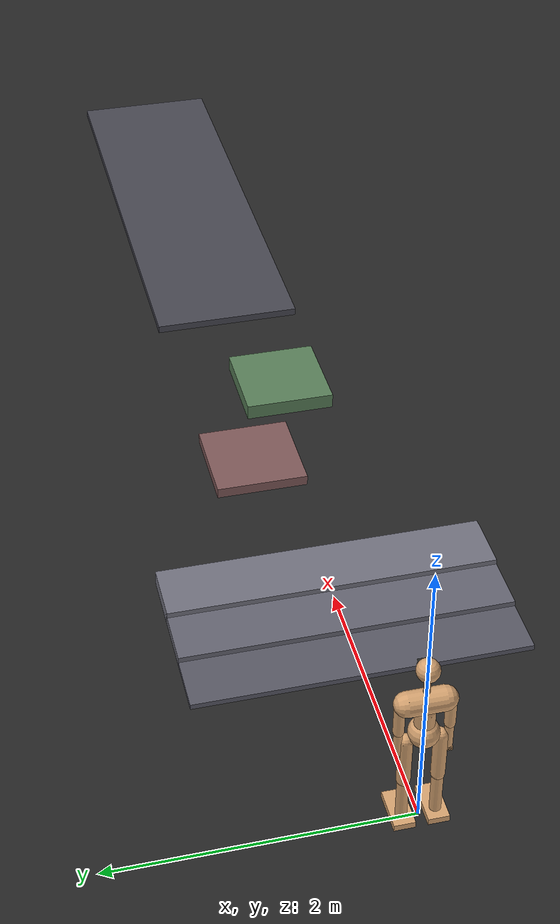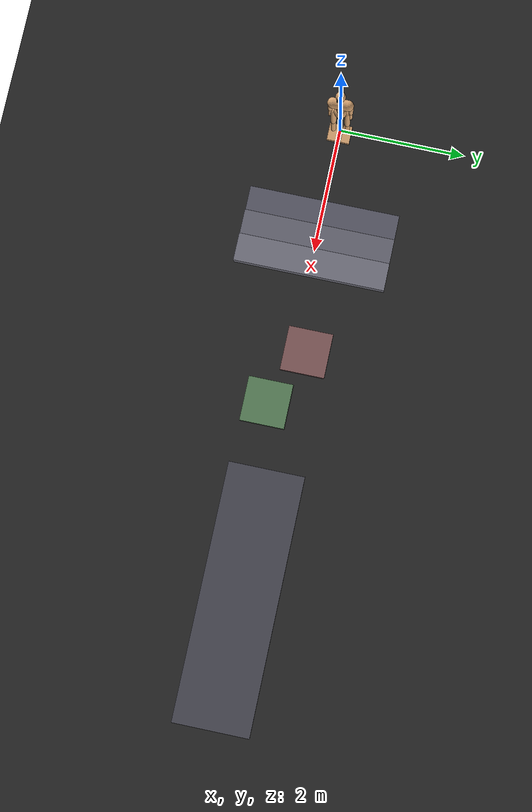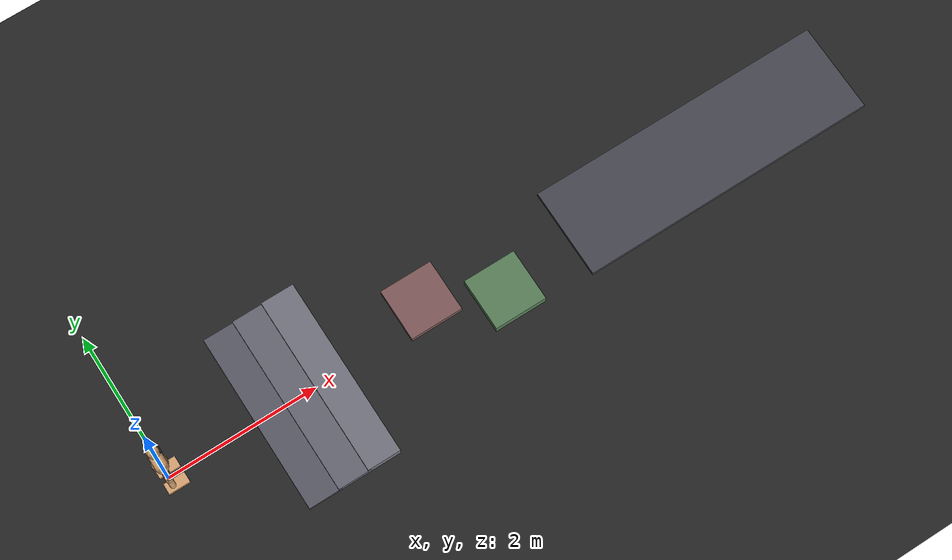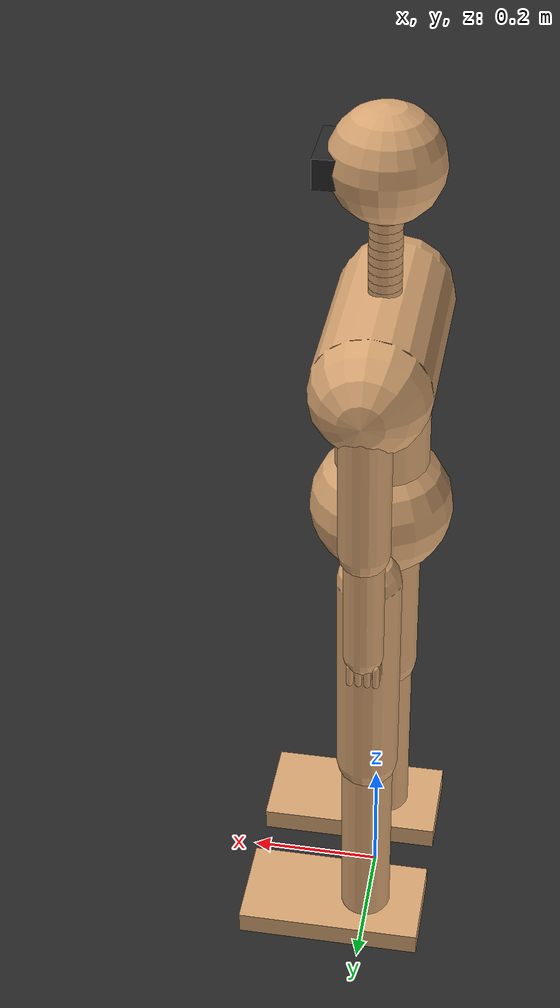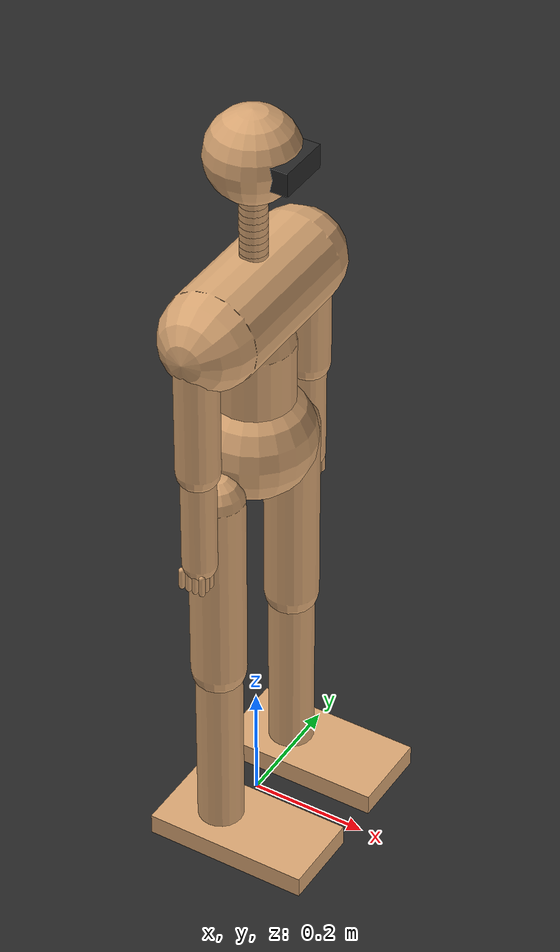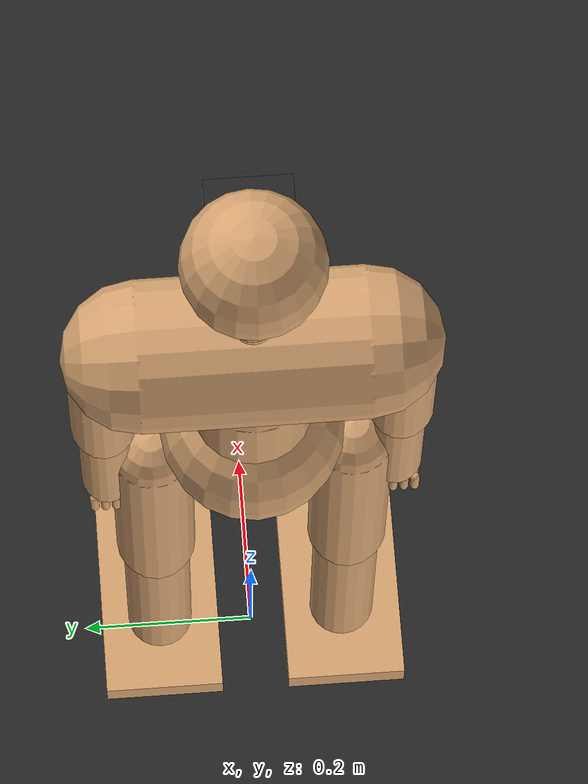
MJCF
<mujoco model="flagship_humanoid">
  <compiler angle="radian" inertiafromgeom="true" coordinate="local"/>
  <option timestep="0.0025" gravity="0 0 -9.81"/>
  <default>
    <joint limited="true" damping="35.0" armature="0.08" stiffness="120.0"/>
    <geom contype="1" conaffinity="1" condim="3" friction="1.6 0.2 0.1" rgba="0.85 0.65 0.45 1"/>
    <position ctrllimited="true" forcelimited="true" forcerange="-400 400"/>
  </default>
  <worldbody>
    <light pos="0 0 6" dir="0 0 -1" diffuse="0.8 0.8 0.8"/>
    <geom name="floor" type="plane" pos="0 0 0" size="30 30 0.1" rgba="0.15 0.15 0.15 1"/>

    <geom name="step_1" type="box" pos="1.4 0 0.02" size="0.22 1.2 0.02" rgba="0.35 0.35 0.4 1"/>
    <geom name="step_2" type="box" pos="1.8 0 0.04" size="0.22 1.2 0.04" rgba="0.40 0.40 0.45 1"/>
    <geom name="step_3" type="box" pos="2.2 0 0.06" size="0.22 1.2 0.06" rgba="0.45 0.45 0.5 1"/>
    <geom name="block_left" type="box" pos="3.6 0.22 0.04" size="0.35 0.35 0.04" rgba="0.5 0.35 0.35 1"/>
    <geom name="block_right" type="box" pos="4.5 -0.22 0.06" size="0.35 0.35 0.06" rgba="0.35 0.5 0.35 1"/>
    <geom name="ridge_track" type="box" pos="7.5 0 0.03" size="2.0 0.6 0.03" rgba="0.28 0.28 0.32 1"/>
    <body name="pelvis" pos="0 0 0.74">
      <freejoint name="root"/>
      <geom name="pelvis_g" type="sphere" size="0.10" mass="10.0"/>
      <site name="vestibular_ear" pos="0 0 0" size="0.01" rgba="1 0 0 1"/>
      <body name="r_thigh" pos="0 -0.11 -0.05">
        <joint name="j_3" type="hinge" axis="1 0 0" range="-0.44 0.09"/>
        <joint name="j_4" type="hinge" axis="0 0 1" range="-1.05 0.61"/>
        <joint name="j_5" type="hinge" axis="0 1 0" range="-1.92 0.35"/>
        <geom name="r_thigh_g" type="capsule" size="0.045" fromto="0 0 0 0 0 -0.34" mass="5.5"/>
        <body name="r_shin" pos="0 0 -0.34">
          <joint name="j_6" type="hinge" axis="0 1 0" range="0.15 2.4"/>
          <geom name="r_shin_g" type="capsule" size="0.038" fromto="0 0 0 0 0 -0.32" mass="4.0"/>
          <body name="r_foot" pos="0 0 -0.32">
            <joint name="j_7" type="hinge" axis="0 1 0" range="-0.87 0.87"/>
            <joint name="j_8" type="hinge" axis="1 0 0" range="-0.87 0.87"/>
            <geom name="r_foot_g" type="box" size="0.14 0.07 0.025" pos="0.05 0 -0.02" mass="1.8"/>
            <site name="r_foot_site" type="box" size="0.142 0.072 0.026" pos="0.05 0 -0.02" rgba="1 0 0 0"/>
          </body></body>
      </body>
      <body name="l_thigh" pos="0 0.11 -0.05">
        <joint name="j_9" type="hinge" axis="1 0 0" range="-0.44 0.09"/>
        <joint name="j_10" type="hinge" axis="0 0 1" range="-1.05 0.61"/>
        <joint name="j_11" type="hinge" axis="0 1 0" range="-1.92 0.35"/>
        <geom name="l_thigh_g" type="capsule" size="0.045" fromto="0 0 0 0 0 -0.34" mass="5.5"/>
        <body name="l_shin" pos="0 0 -0.34">
          <joint name="j_12" type="hinge" axis="0 1 0" range="0.15 2.4"/>
          <geom name="l_shin_g" type="capsule" size="0.038" fromto="0 0 0 0 0 -0.32" mass="4.0"/>
          <body name="l_foot" pos="0 0 -0.32">
            <joint name="j_13" type="hinge" axis="0 1 0" range="-0.87 0.87"/>
            <joint name="j_14" type="hinge" axis="1 0 0" range="-0.87 0.87"/>
            <geom name="l_foot_g" type="box" size="0.14 0.07 0.025" pos="0.05 0 -0.02" mass="1.8"/>
            <site name="l_foot_site" type="box" size="0.142 0.072 0.026" pos="0.05 0 -0.02" rgba="1 0 0 0"/>
          </body></body>
      </body>
      <body name="lower_torso" pos="0 0 0.06">
        <joint name="j_0" type="hinge" axis="0 1 0" range="-1.31 0.52"/>
        <joint name="j_1" type="hinge" axis="0 0 1" range="-0.79 0.79"/>
        <joint name="j_2" type="hinge" axis="1 0 0" range="-0.61 0.61"/>
        <geom name="lower_torso_g" type="capsule" size="0.065" fromto="0 0 0 0 0 0.12" mass="4.0"/>
        <body name="upper_chest" pos="0 0 0.12">
          <geom name="chest_g" type="capsule" size="0.08" fromto="0 -0.12 0.08 0 0.12 0.08" mass="8.0"/>
          <body name="r_upper_arm" pos="0 -0.16 0.08">
            <joint name="j_15" type="hinge" axis="0 1 0" range="-1.48 1.05"/>
            <joint name="j_16" type="hinge" axis="1 0 0" range="-1.48 1.05"/>
            <geom name="r_uarm_g" type="capsule" size="0.035" fromto="0 0 0 0 0 -0.22" mass="1.5"/>
            <body name="r_forearm" pos="0 0 -0.22">
              <joint name="j_17" type="hinge" axis="0 1 0" range="-1.57 0.87"/>
              <geom name="r_farm_g" type="capsule" size="0.028" fromto="0 0 0 0 0 -0.18" mass="1.0"/>
              <body name="r_hand" pos="0 0 -0.18">
                <body name="r_finger_0" pos="-0.02 -0.02 -0.01">
                  <joint name="j_21" type="hinge" axis="0 1 0" range="-0.78 0.78" stiffness="10.0" damping="1.0"/>
                  <geom name="r_fg_0" type="capsule" size="0.005" fromto="0 0 0 0 0 -0.03" mass="0.05"/>
                </body>
                <body name="r_finger_1" pos="-0.008 -0.02 -0.01">
                  <joint name="j_22" type="hinge" axis="0 1 0" range="-0.78 0.78" stiffness="10.0" damping="1.0"/>
                  <geom name="r_fg_1" type="capsule" size="0.005" fromto="0 0 0 0 0 -0.03" mass="0.05"/>
                </body>
                <body name="r_finger_2" pos="0.004 -0.02 -0.01">
                  <joint name="j_23" type="hinge" axis="0 1 0" range="-0.78 0.78" stiffness="10.0" damping="1.0"/>
                  <geom name="r_fg_2" type="capsule" size="0.005" fromto="0 0 0 0 0 -0.03" mass="0.05"/>
                </body>
                <body name="r_finger_3" pos="0.016000000000000004 -0.02 -0.01">
                  <joint name="j_24" type="hinge" axis="0 1 0" range="-0.78 0.78" stiffness="10.0" damping="1.0"/>
                  <geom name="r_fg_3" type="capsule" size="0.005" fromto="0 0 0 0 0 -0.03" mass="0.05"/>
                </body>
                <body name="r_finger_4" pos="-0.02 -0.008 -0.01">
                  <joint name="j_25" type="hinge" axis="0 1 0" range="-0.78 0.78" stiffness="10.0" damping="1.0"/>
                  <geom name="r_fg_4" type="capsule" size="0.005" fromto="0 0 0 0 0 -0.03" mass="0.05"/>
                </body>
                <body name="r_finger_5" pos="-0.008 -0.008 -0.01">
                  <joint name="j_26" type="hinge" axis="0 1 0" range="-0.78 0.78" stiffness="10.0" damping="1.0"/>
                  <geom name="r_fg_5" type="capsule" size="0.005" fromto="0 0 0 0 0 -0.03" mass="0.05"/>
                </body>
                <body name="r_finger_6" pos="0.004 -0.008 -0.01">
                  <joint name="j_27" type="hinge" axis="0 1 0" range="-0.78 0.78" stiffness="10.0" damping="1.0"/>
                  <geom name="r_fg_6" type="capsule" size="0.005" fromto="0 0 0 0 0 -0.03" mass="0.05"/>
                </body>
                <body name="r_finger_7" pos="0.016000000000000004 -0.008 -0.01">
                  <joint name="j_28" type="hinge" axis="0 1 0" range="-0.78 0.78" stiffness="10.0" damping="1.0"/>
                  <geom name="r_fg_7" type="capsule" size="0.005" fromto="0 0 0 0 0 -0.03" mass="0.05"/>
                </body>
                <body name="r_finger_8" pos="-0.02 0.004 -0.01">
                  <joint name="j_29" type="hinge" axis="0 1 0" range="-0.78 0.78" stiffness="10.0" damping="1.0"/>
                  <geom name="r_fg_8" type="capsule" size="0.005" fromto="0 0 0 0 0 -0.03" mass="0.05"/>
                </body>
                <body name="r_finger_9" pos="-0.008 0.004 -0.01">
                  <joint name="j_30" type="hinge" axis="0 1 0" range="-0.78 0.78" stiffness="10.0" damping="1.0"/>
                  <geom name="r_fg_9" type="capsule" size="0.005" fromto="0 0 0 0 0 -0.03" mass="0.05"/>
                </body>
                <body name="r_finger_10" pos="0.004 0.004 -0.01">
                  <joint name="j_31" type="hinge" axis="0 1 0" range="-0.78 0.78" stiffness="10.0" damping="1.0"/>
                  <geom name="r_fg_10" type="capsule" size="0.005" fromto="0 0 0 0 0 -0.03" mass="0.05"/>
                </body>
                <body name="r_finger_11" pos="0.016000000000000004 0.004 -0.01">
                  <joint name="j_32" type="hinge" axis="0 1 0" range="-0.78 0.78" stiffness="10.0" damping="1.0"/>
                  <geom name="r_fg_11" type="capsule" size="0.005" fromto="0 0 0 0 0 -0.03" mass="0.05"/>
                </body>
                <body name="r_finger_12" pos="-0.02 0.016000000000000004 -0.01">
                  <joint name="j_33" type="hinge" axis="0 1 0" range="-0.78 0.78" stiffness="10.0" damping="1.0"/>
                  <geom name="r_fg_12" type="capsule" size="0.005" fromto="0 0 0 0 0 -0.03" mass="0.05"/>
                </body>
                <body name="r_finger_13" pos="-0.008 0.016000000000000004 -0.01">
                  <joint name="j_34" type="hinge" axis="0 1 0" range="-0.78 0.78" stiffness="10.0" damping="1.0"/>
                  <geom name="r_fg_13" type="capsule" size="0.005" fromto="0 0 0 0 0 -0.03" mass="0.05"/>
                </body>
                <body name="r_finger_14" pos="0.004 0.016000000000000004 -0.01">
                  <joint name="j_35" type="hinge" axis="0 1 0" range="-0.78 0.78" stiffness="10.0" damping="1.0"/>
                  <geom name="r_fg_14" type="capsule" size="0.005" fromto="0 0 0 0 0 -0.03" mass="0.05"/>
                </body>
                <body name="r_finger_15" pos="0.016000000000000004 0.016000000000000004 -0.01">
                  <joint name="j_36" type="hinge" axis="0 1 0" range="-0.78 0.78" stiffness="10.0" damping="1.0"/>
                  <geom name="r_fg_15" type="capsule" size="0.005" fromto="0 0 0 0 0 -0.03" mass="0.05"/>
                </body>
              </body>
            </body>
          </body>
          <body name="l_upper_arm" pos="0 0.16 0.08">
            <joint name="j_18" type="hinge" axis="0 1 0" range="-1.05 1.48"/>
            <joint name="j_19" type="hinge" axis="1 0 0" range="-1.05 1.48"/>
            <geom name="l_uarm_g" type="capsule" size="0.035" fromto="0 0 0 0 0 -0.22" mass="1.5"/>
            <body name="l_forearm" pos="0 0 -0.22">
              <joint name="j_20" type="hinge" axis="0 1 0" range="-1.57 0.87"/>
              <geom name="l_farm_g" type="capsule" size="0.028" fromto="0 0 0 0 0 -0.18" mass="1.0"/>
              <body name="l_hand" pos="0 0 -0.18">
                <body name="l_finger_0" pos="-0.02 -0.02 -0.01">
                  <joint name="j_37" type="hinge" axis="0 1 0" range="-0.78 0.78" stiffness="10.0" damping="1.0"/>
                  <geom name="l_fg_0" type="capsule" size="0.005" fromto="0 0 0 0 0 -0.03" mass="0.05"/>
                </body>
                <body name="l_finger_1" pos="-0.008 -0.02 -0.01">
                  <joint name="j_38" type="hinge" axis="0 1 0" range="-0.78 0.78" stiffness="10.0" damping="1.0"/>
                  <geom name="l_fg_1" type="capsule" size="0.005" fromto="0 0 0 0 0 -0.03" mass="0.05"/>
                </body>
                <body name="l_finger_2" pos="0.004 -0.02 -0.01">
                  <joint name="j_39" type="hinge" axis="0 1 0" range="-0.78 0.78" stiffness="10.0" damping="1.0"/>
                  <geom name="l_fg_2" type="capsule" size="0.005" fromto="0 0 0 0 0 -0.03" mass="0.05"/>
                </body>
                <body name="l_finger_3" pos="0.016000000000000004 -0.02 -0.01">
                  <joint name="j_40" type="hinge" axis="0 1 0" range="-0.78 0.78" stiffness="10.0" damping="1.0"/>
                  <geom name="l_fg_3" type="capsule" size="0.005" fromto="0 0 0 0 0 -0.03" mass="0.05"/>
                </body>
                <body name="l_finger_4" pos="-0.02 -0.008 -0.01">
                  <joint name="j_41" type="hinge" axis="0 1 0" range="-0.78 0.78" stiffness="10.0" damping="1.0"/>
                  <geom name="l_fg_4" type="capsule" size="0.005" fromto="0 0 0 0 0 -0.03" mass="0.05"/>
                </body>
                <body name="l_finger_5" pos="-0.008 -0.008 -0.01">
                  <joint name="j_42" type="hinge" axis="0 1 0" range="-0.78 0.78" stiffness="10.0" damping="1.0"/>
                  <geom name="l_fg_5" type="capsule" size="0.005" fromto="0 0 0 0 0 -0.03" mass="0.05"/>
                </body>
                <body name="l_finger_6" pos="0.004 -0.008 -0.01">
                  <joint name="j_43" type="hinge" axis="0 1 0" range="-0.78 0.78" stiffness="10.0" damping="1.0"/>
                  <geom name="l_fg_6" type="capsule" size="0.005" fromto="0 0 0 0 0 -0.03" mass="0.05"/>
                </body>
                <body name="l_finger_7" pos="0.016000000000000004 -0.008 -0.01">
                  <joint name="j_44" type="hinge" axis="0 1 0" range="-0.78 0.78" stiffness="10.0" damping="1.0"/>
                  <geom name="l_fg_7" type="capsule" size="0.005" fromto="0 0 0 0 0 -0.03" mass="0.05"/>
                </body>
                <body name="l_finger_8" pos="-0.02 0.004 -0.01">
                  <joint name="j_45" type="hinge" axis="0 1 0" range="-0.78 0.78" stiffness="10.0" damping="1.0"/>
                  <geom name="l_fg_8" type="capsule" size="0.005" fromto="0 0 0 0 0 -0.03" mass="0.05"/>
                </body>
                <body name="l_finger_9" pos="-0.008 0.004 -0.01">
                  <joint name="j_46" type="hinge" axis="0 1 0" range="-0.78 0.78" stiffness="10.0" damping="1.0"/>
                  <geom name="l_fg_9" type="capsule" size="0.005" fromto="0 0 0 0 0 -0.03" mass="0.05"/>
                </body>
                <body name="l_finger_10" pos="0.004 0.004 -0.01">
                  <joint name="j_47" type="hinge" axis="0 1 0" range="-0.78 0.78" stiffness="10.0" damping="1.0"/>
                  <geom name="l_fg_10" type="capsule" size="0.005" fromto="0 0 0 0 0 -0.03" mass="0.05"/>
                </body>
                <body name="l_finger_11" pos="0.016000000000000004 0.004 -0.01">
                  <joint name="j_48" type="hinge" axis="0 1 0" range="-0.78 0.78" stiffness="10.0" damping="1.0"/>
                  <geom name="l_fg_11" type="capsule" size="0.005" fromto="0 0 0 0 0 -0.03" mass="0.05"/>
                </body>
                <body name="l_finger_12" pos="-0.02 0.016000000000000004 -0.01">
                  <joint name="j_49" type="hinge" axis="0 1 0" range="-0.78 0.78" stiffness="10.0" damping="1.0"/>
                  <geom name="l_fg_12" type="capsule" size="0.005" fromto="0 0 0 0 0 -0.03" mass="0.05"/>
                </body>
                <body name="l_finger_13" pos="-0.008 0.016000000000000004 -0.01">
                  <joint name="j_50" type="hinge" axis="0 1 0" range="-0.78 0.78" stiffness="10.0" damping="1.0"/>
                  <geom name="l_fg_13" type="capsule" size="0.005" fromto="0 0 0 0 0 -0.03" mass="0.05"/>
                </body>
                <body name="l_finger_14" pos="0.004 0.016000000000000004 -0.01">
                  <joint name="j_51" type="hinge" axis="0 1 0" range="-0.78 0.78" stiffness="10.0" damping="1.0"/>
                  <geom name="l_fg_14" type="capsule" size="0.005" fromto="0 0 0 0 0 -0.03" mass="0.05"/>
                </body>
                <body name="l_finger_15" pos="0.016000000000000004 0.016000000000000004 -0.01">
                  <joint name="j_52" type="hinge" axis="0 1 0" range="-0.78 0.78" stiffness="10.0" damping="1.0"/>
                  <geom name="l_fg_15" type="capsule" size="0.005" fromto="0 0 0 0 0 -0.03" mass="0.05"/>
                </body>
              </body>
            </body>
          </body>
          <body name="spine_base" pos="0 0 0.14">
            <body name="v_seg_0" pos="0 0 0.012">
              <joint name="j_53" type="hinge" axis="0 1 0" range="-0.35 0.35" stiffness="60.0"/>
              <geom name="vg_0" type="capsule" size="0.022" fromto="0 0 0 0 0 0.012" mass="0.2"/>
              <body name="v_seg_1" pos="0 0 0.012">
                <joint name="j_54" type="hinge" axis="0 1 0" range="-0.35 0.35" stiffness="60.0"/>
                <geom name="vg_1" type="capsule" size="0.022" fromto="0 0 0 0 0 0.012" mass="0.2"/>
              <body name="v_seg_2" pos="0 0 0.012">
                <joint name="j_55" type="hinge" axis="0 1 0" range="-0.35 0.35" stiffness="60.0"/>
                <geom name="vg_2" type="capsule" size="0.022" fromto="0 0 0 0 0 0.012" mass="0.2"/>
              <body name="v_seg_3" pos="0 0 0.012">
                <joint name="j_56" type="hinge" axis="0 1 0" range="-0.35 0.35" stiffness="60.0"/>
                <geom name="vg_3" type="capsule" size="0.022" fromto="0 0 0 0 0 0.012" mass="0.2"/>
              <body name="v_seg_4" pos="0 0 0.012">
                <joint name="j_57" type="hinge" axis="0 1 0" range="-0.35 0.35" stiffness="60.0"/>
                <geom name="vg_4" type="capsule" size="0.022" fromto="0 0 0 0 0 0.012" mass="0.2"/>
              <body name="v_seg_5" pos="0 0 0.012">
                <joint name="j_58" type="hinge" axis="0 1 0" range="-0.35 0.35" stiffness="60.0"/>
                <geom name="vg_5" type="capsule" size="0.022" fromto="0 0 0 0 0 0.012" mass="0.2"/>
              <body name="v_seg_6" pos="0 0 0.012">
                <joint name="j_59" type="hinge" axis="0 1 0" range="-0.35 0.35" stiffness="60.0"/>
                <geom name="vg_6" type="capsule" size="0.022" fromto="0 0 0 0 0 0.012" mass="0.2"/>
              <body name="v_seg_7" pos="0 0 0.012">
                <joint name="j_60" type="hinge" axis="0 1 0" range="-0.35 0.35" stiffness="60.0"/>
                <geom name="vg_7" type="capsule" size="0.022" fromto="0 0 0 0 0 0.012" mass="0.2"/>
              <body name="v_seg_8" pos="0 0 0.012">
                <joint name="j_61" type="hinge" axis="0 1 0" range="-0.35 0.35" stiffness="60.0"/>
                <geom name="vg_8" type="capsule" size="0.022" fromto="0 0 0 0 0 0.012" mass="0.2"/>
              <body name="v_seg_9" pos="0 0 0.012">
                <joint name="j_62" type="hinge" axis="0 1 0" range="-0.35 0.35" stiffness="60.0"/>
                <geom name="vg_9" type="capsule" size="0.022" fromto="0 0 0 0 0 0.012" mass="0.2"/>
              <body name="v_seg_10" pos="0 0 0.012">
                <joint name="j_63" type="hinge" axis="0 1 0" range="-0.35 0.35" stiffness="60.0"/>
                <geom name="vg_10" type="capsule" size="0.022" fromto="0 0 0 0 0 0.012" mass="0.2"/>
                <body name="head" pos="0 0 0.012">
                  <geom name="head_g" type="sphere" size="0.075" mass="2.5" pos="0 0 0.05" rgba="0.85 0.65 0.45 1"/>
                  <geom name="visor_g" type="box" size="0.035 0.045 0.02" pos="0.05 0 0.05" rgba="0.15 0.15 0.15 1"/>
                  <camera name="visor_camera" pos="0.06 0 0.05" euler="0 1.5708 0" fovy="85"/>
                </body>
              </body>
              </body>
              </body>
              </body>
              </body>
              </body>
              </body>
              </body>
              </body>
              </body>
              </body>
          </body>
        </body>
      </body>
    </body>
  </worldbody>
  <contact>
    <exclude body1="upper_chest" body2="r_upper_arm"/>
    <exclude body1="upper_chest" body2="l_upper_arm"/>
    <exclude body1="upper_chest" body2="r_forearm"/>
    <exclude body1="upper_chest" body2="l_forearm"/>
  </contact>
  <sensor>
    <accelerometer name="vestibular_accel" site="vestibular_ear"/>
    <gyro name="vestibular_gyro" site="vestibular_ear"/>

    <touch name="r_foot_pressure" site="r_foot_site"/>
    <touch name="l_foot_pressure" site="l_foot_site"/>
  </sensor>
  <actuator>
    <position name="actuator_0" joint="j_0" kp="650" ctrlrange="-1.31 0.52"/>
    <position name="actuator_1" joint="j_1" kp="650" ctrlrange="-0.79 0.79"/>
    <position name="actuator_2" joint="j_2" kp="650" ctrlrange="-0.61 0.61"/>
    <position name="actuator_3" joint="j_3" kp="650" ctrlrange="-0.44 0.09"/>
    <position name="actuator_4" joint="j_4" kp="650" ctrlrange="-1.05 0.61"/>
    <position name="actuator_5" joint="j_5" kp="650" ctrlrange="-1.92 0.35"/>
    <position name="actuator_6" joint="j_6" kp="650" ctrlrange="0.15 2.4"/>
    <position name="actuator_7" joint="j_7" kp="650" ctrlrange="-0.87 0.87"/>
    <position name="actuator_8" joint="j_8" kp="650" ctrlrange="-0.87 0.87"/>
    <position name="actuator_9" joint="j_9" kp="650" ctrlrange="-0.44 0.09"/>
    <position name="actuator_10" joint="j_10" kp="650" ctrlrange="-1.05 0.61"/>
    <position name="actuator_11" joint="j_11" kp="650" ctrlrange="-1.92 0.35"/>
    <position name="actuator_12" joint="j_12" kp="650" ctrlrange="0.15 2.4"/>
    <position name="actuator_13" joint="j_13" kp="650" ctrlrange="-0.87 0.87"/>
    <position name="actuator_14" joint="j_14" kp="650" ctrlrange="-0.87 0.87"/>
    <position name="actuator_15" joint="j_15" kp="650" ctrlrange="-1.48 1.05"/>
    <position name="actuator_16" joint="j_16" kp="650" ctrlrange="-1.48 1.05"/>
    <position name="actuator_17" joint="j_17" kp="650" ctrlrange="-1.57 0.87"/>
    <position name="actuator_18" joint="j_18" kp="650" ctrlrange="-1.05 1.48"/>
    <position name="actuator_19" joint="j_19" kp="650" ctrlrange="-1.05 1.48"/>
    <position name="actuator_20" joint="j_20" kp="650" ctrlrange="-1.57 0.87"/>
    <position name="actuator_21" joint="j_21" kp="150" ctrlrange="-0.78 0.78"/>
    <position name="actuator_22" joint="j_22" kp="150" ctrlrange="-0.78 0.78"/>
    <position name="actuator_23" joint="j_23" kp="150" ctrlrange="-0.78 0.78"/>
    <position name="actuator_24" joint="j_24" kp="150" ctrlrange="-0.78 0.78"/>
    <position name="actuator_25" joint="j_25" kp="150" ctrlrange="-0.78 0.78"/>
    <position name="actuator_26" joint="j_26" kp="150" ctrlrange="-0.78 0.78"/>
    <position name="actuator_27" joint="j_27" kp="150" ctrlrange="-0.78 0.78"/>
    <position name="actuator_28" joint="j_28" kp="150" ctrlrange="-0.78 0.78"/>
    <position name="actuator_29" joint="j_29" kp="150" ctrlrange="-0.78 0.78"/>
    <position name="actuator_30" joint="j_30" kp="150" ctrlrange="-0.78 0.78"/>
    <position name="actuator_31" joint="j_31" kp="150" ctrlrange="-0.78 0.78"/>
    <position name="actuator_32" joint="j_32" kp="150" ctrlrange="-0.78 0.78"/>
    <position name="actuator_33" joint="j_33" kp="150" ctrlrange="-0.78 0.78"/>
    <position name="actuator_34" joint="j_34" kp="150" ctrlrange="-0.78 0.78"/>
    <position name="actuator_35" joint="j_35" kp="150" ctrlrange="-0.78 0.78"/>
    <position name="actuator_36" joint="j_36" kp="150" ctrlrange="-0.78 0.78"/>
    <position name="actuator_37" joint="j_37" kp="150" ctrlrange="-0.78 0.78"/>
    <position name="actuator_38" joint="j_38" kp="150" ctrlrange="-0.78 0.78"/>
    <position name="actuator_39" joint="j_39" kp="150" ctrlrange="-0.78 0.78"/>
    <position name="actuator_40" joint="j_40" kp="150" ctrlrange="-0.78 0.78"/>
    <position name="actuator_41" joint="j_41" kp="150" ctrlrange="-0.78 0.78"/>
    <position name="actuator_42" joint="j_42" kp="150" ctrlrange="-0.78 0.78"/>
    <position name="actuator_43" joint="j_43" kp="150" ctrlrange="-0.78 0.78"/>
    <position name="actuator_44" joint="j_44" kp="150" ctrlrange="-0.78 0.78"/>
    <position name="actuator_45" joint="j_45" kp="150" ctrlrange="-0.78 0.78"/>
    <position name="actuator_46" joint="j_46" kp="150" ctrlrange="-0.78 0.78"/>
    <position name="actuator_47" joint="j_47" kp="150" ctrlrange="-0.78 0.78"/>
    <position name="actuator_48" joint="j_48" kp="150" ctrlrange="-0.78 0.78"/>
    <position name="actuator_49" joint="j_49" kp="150" ctrlrange="-0.78 0.78"/>
    <position name="actuator_50" joint="j_50" kp="150" ctrlrange="-0.78 0.78"/>
    <position name="actuator_51" joint="j_51" kp="150" ctrlrange="-0.78 0.78"/>
    <position name="actuator_52" joint="j_52" kp="150" ctrlrange="-0.78 0.78"/>
    <position name="actuator_53" joint="j_53" kp="150" ctrlrange="-0.35 0.35"/>
    <position name="actuator_54" joint="j_54" kp="150" ctrlrange="-0.35 0.35"/>
    <position name="actuator_55" joint="j_55" kp="150" ctrlrange="-0.35 0.35"/>
    <position name="actuator_56" joint="j_56" kp="150" ctrlrange="-0.35 0.35"/>
    <position name="actuator_57" joint="j_57" kp="150" ctrlrange="-0.35 0.35"/>
    <position name="actuator_58" joint="j_58" kp="150" ctrlrange="-0.35 0.35"/>
    <position name="actuator_59" joint="j_59" kp="150" ctrlrange="-0.35 0.35"/>
    <position name="actuator_60" joint="j_60" kp="150" ctrlrange="-0.35 0.35"/>
    <position name="actuator_61" joint="j_61" kp="150" ctrlrange="-0.35 0.35"/>
    <position name="actuator_62" joint="j_62" kp="150" ctrlrange="-0.35 0.35"/>
    <position name="actuator_63" joint="j_63" kp="150" ctrlrange="-0.35 0.35"/>
  </actuator>
</mujoco>
